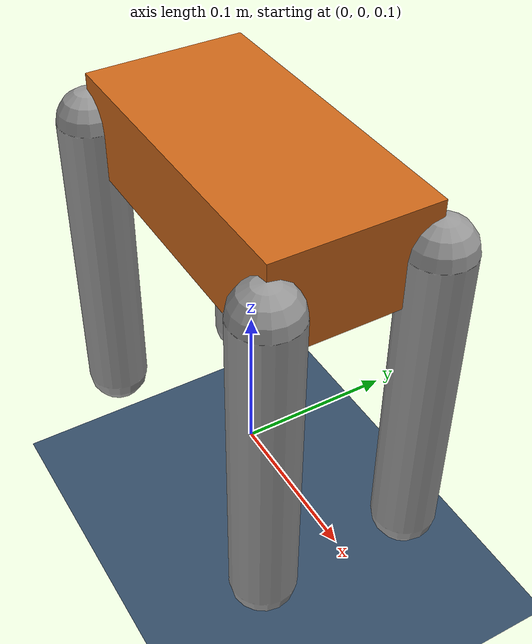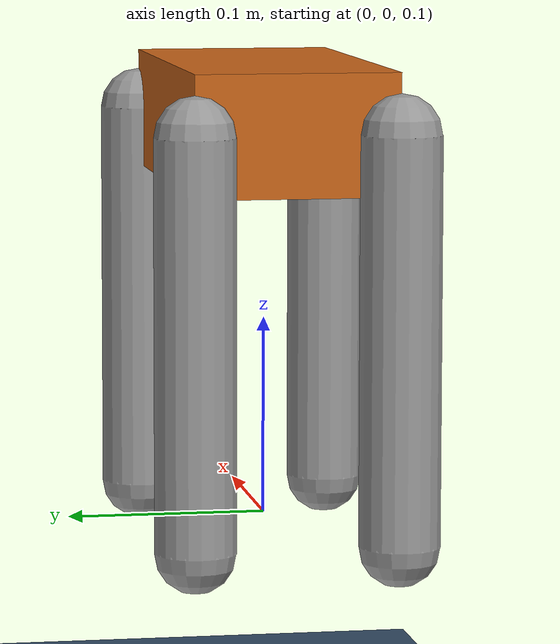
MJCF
<mujoco model="simple_quadruped">
    <option timestep="0.01" gravity="0 0 -9.81"/>
    <size njmax="1000" nconmax="200"/>

    <default>
        <geom rgba="0.6 0.6 0.6 1" condim="3" friction="1 0.1 0.1"/>
        <joint limited="true" damping="1"/>
    </default>

    <worldbody>
        <!-- Ground -->
        <geom name="floor" type="plane" size="5 5 0.1" rgba="0.2 0.3 0.4 1"/>

        <!-- Robot base -->
        <body name="torso" pos="0 0 0.3">
            <geom type="box" size="0.1 0.05 0.03" rgba="0.8 0.4 0.1 1"/>

            <!-- Front left leg -->
            <body name="front_left_leg" pos="0.1  0.05 0">
                <joint name="fl_hip" axis="0 1 0" range="-30 30"/>
                <geom type="capsule" fromto="0 0 0 0 0 -0.2" size="0.02"/>
            </body>

            <!-- Front right leg -->
            <body name="front_right_leg" pos="0.1 -0.05 0">
                <joint name="fr_hip" axis="0 1 0" range="-30 30"/>
                <geom type="capsule" fromto="0 0 0 0 0 -0.2" size="0.02"/>
            </body>

            <!-- Back left leg -->
            <body name="back_left_leg" pos="-0.1  0.05 0">
                <joint name="bl_hip" axis="0 1 0" range="-30 30"/>
                <geom type="capsule" fromto="0 0 0 0 0 -0.2" size="0.02"/>
            </body>

            <!-- Back right leg -->
            <body name="back_right_leg" pos="-0.1 -0.05 0">
                <joint name="br_hip" axis="0 1 0" range="-30 30"/>
                <geom type="capsule" fromto="0 0 0 0 0 -0.2" size="0.02"/>
            </body>
        </body>

        <!-- Camera -->
        <camera name="sideview" pos="1 -1 0.5" xyaxes="1 1 0 0 0 1"/>
    </worldbody>

    <actuator>
        <motor joint="fl_hip" ctrlrange="-1 1" gear="1"/>
        <motor joint="fr_hip" ctrlrange="-1 1" gear="1"/>
        <motor joint="bl_hip" ctrlrange="-1 1" gear="1"/>
        <motor joint="br_hip" ctrlrange="-1 1" gear="1"/>
    </actuator>
</mujoco>
